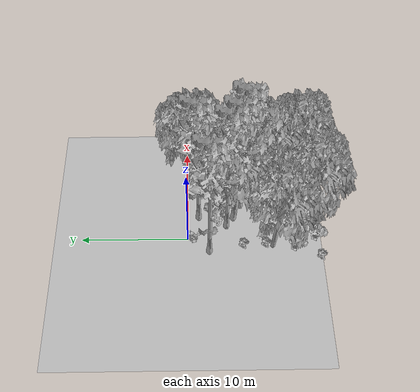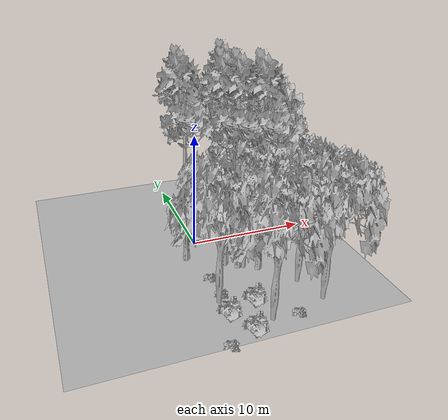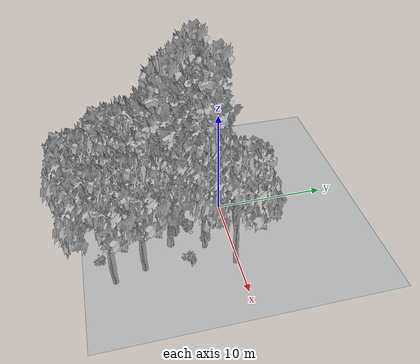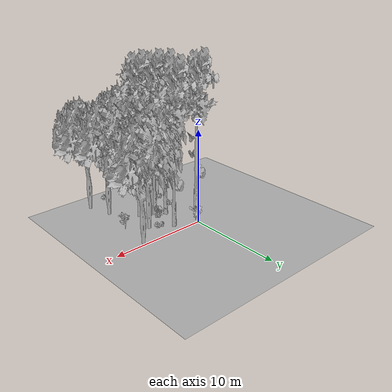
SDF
<sdf version="1.7">
 <world name="default">
  <model name="ground_plane">
   <static>1</static>
   <link name="link">
    <collision name="collision">
     <pose>-50 0 0 0 -0 0</pose>
     <geometry><plane><normal>0 0 1</normal><size>80 80</size></plane></geometry>
     <surface><contact><ode><min_depth>0.01</min_depth><max_vel>0</max_vel></ode></contact></surface>
    </collision>
    <visual name="grass">
     <cast_shadows>0</cast_shadows>
     <geometry>
      <mesh>
       <scale>0.46714285714285714 0.46714285714285714 0.1</scale>
       <uri>file://grass_plane/meshes/grass_plane.dae</uri>
      </mesh>
     </geometry>
    </visual>
   </link>
  </model>
  <model name="Tree 123">
   <static>1</static>
   <pose>5.75366468429813 -7.608955625040792 0 1.57079 -0 0</pose>
   <link name="link">
    <collision name="collision">
     <geometry><mesh><scale>3.5 5 3.5</scale><uri>model://tree_2/meshes/tree_2.obj</uri></mesh></geometry>
    </collision>
    <visual name="visual">
     <geometry><mesh><scale>3.5 5 3.5</scale><uri>model://tree_2/meshes/tree_2.obj</uri></mesh></geometry>
    </visual>
   </link>
  </model>
  <model name="Tree 262">
   <static>1</static>
   <pose>6.748785779944178 -0.22790165724429556 0 1.57079 -0 0</pose>
   <link name="link">
    <collision name="collision">
     <geometry><mesh><scale>3.5 5 3.5</scale><uri>model://tree_2/meshes/tree_2.obj</uri></mesh></geometry>
    </collision>
    <visual name="visual">
     <geometry><mesh><scale>3.5 5 3.5</scale><uri>model://tree_2/meshes/tree_2.obj</uri></mesh></geometry>
    </visual>
   </link>
  </model>
  <model name="Tree 298">
   <static>1</static>
   <pose>4.455972239160822 -2.35144467264071 0 1.57079 -0 0</pose>
   <link name="link">
    <collision name="collision">
     <geometry><mesh><scale>3.5 5 3.5</scale><uri>model://tree_2/meshes/tree_2.obj</uri></mesh></geometry>
    </collision>
    <visual name="visual">
     <geometry><mesh><scale>3.5 5 3.5</scale><uri>model://tree_2/meshes/tree_2.obj</uri></mesh></geometry>
    </visual>
   </link>
  </model>
  <model name="Tree 320">
   <static>1</static>
   <pose>6.520293039682336 -10.087174391727434 0 1.57079 -0 0</pose>
   <link name="link">
    <collision name="collision">
     <geometry><mesh><scale>3.5 5 3.5</scale><uri>model://tree_2/meshes/tree_2.obj</uri></mesh></geometry>
    </collision>
    <visual name="visual">
     <geometry><mesh><scale>3.5 5 3.5</scale><uri>model://tree_2/meshes/tree_2.obj</uri></mesh></geometry>
    </visual>
   </link>
  </model>
  <model name="Tree 379">
   <static>1</static>
   <pose>-1.399387581823376 -2.0093007270075134 0 1.57079 -0 0</pose>
   <link name="link">
    <collision name="collision">
     <geometry><mesh><scale>3.5 5 3.5</scale><uri>model://tree_9/meshes/tree_9.obj</uri></mesh></geometry>
    </collision>
    <visual name="visual">
     <geometry><mesh><scale>3.5 5 3.5</scale><uri>model://tree_9/meshes/tree_9.obj</uri></mesh></geometry>
    </visual>
   </link>
  </model>
  <model name="Tree 395">
   <static>1</static>
   <pose>2.52199741593207 -4.563326864709694 0 1.57079 -0 0</pose>
   <link name="link">
    <collision name="collision">
     <geometry><mesh><scale>3.5 5 3.5</scale><uri>model://tree_2/meshes/tree_2.obj</uri></mesh></geometry>
    </collision>
    <visual name="visual">
     <geometry><mesh><scale>3.5 5 3.5</scale><uri>model://tree_2/meshes/tree_2.obj</uri></mesh></geometry>
    </visual>
   </link>
  </model>
  <model name="Tree 430">
   <static>1</static>
   <pose>2.2413828334305563 -4.382938306900769 0 1.57079 -0 0</pose>
   <link name="link">
    <collision name="collision">
     <geometry><mesh><scale>3.5 5 3.5</scale><uri>model://tree_9/meshes/tree_9.obj</uri></mesh></geometry>
    </collision>
    <visual name="visual">
     <geometry><mesh><scale>3.5 5 3.5</scale><uri>model://tree_9/meshes/tree_9.obj</uri></mesh></geometry>
    </visual>
   </link>
  </model>
  <model name="Tree 493">
   <static>1</static>
   <pose>-0.9529934055958833 -8.025983689429754 0 1.57079 -0 0</pose>
   <link name="link">
    <collision name="collision">
     <geometry><mesh><scale>3.5 5 3.5</scale><uri>model://tree_2/meshes/tree_2.obj</uri></mesh></geometry>
    </collision>
    <visual name="visual">
     <geometry><mesh><scale>3.5 5 3.5</scale><uri>model://tree_2/meshes/tree_2.obj</uri></mesh></geometry>
    </visual>
   </link>
  </model>
  <model name="Tree 515">
   <static>1</static>
   <pose>1.964688802451768 -10.968208029282202 0 1.57079 -0 0</pose>
   <link name="link">
    <collision name="collision">
     <geometry><mesh><scale>3.5 5 3.5</scale><uri>model://tree_2/meshes/tree_2.obj</uri></mesh></geometry>
    </collision>
    <visual name="visual">
     <geometry><mesh><scale>3.5 5 3.5</scale><uri>model://tree_2/meshes/tree_2.obj</uri></mesh></geometry>
    </visual>
   </link>
  </model>
  <model name="Tree 592">
   <static>1</static>
   <pose>2.336964995145337 -1.0725719359684263 0 1.57079 -0 0</pose>
   <link name="link">
    <collision name="collision">
     <geometry><mesh><scale>3.5 5 3.5</scale><uri>model://tree_9/meshes/tree_9.obj</uri></mesh></geometry>
    </collision>
    <visual name="visual">
     <geometry><mesh><scale>3.5 5 3.5</scale><uri>model://tree_9/meshes/tree_9.obj</uri></mesh></geometry>
    </visual>
   </link>
  </model>
  <model name="Tree 606">
   <static>1</static>
   <pose>1.3544350463957358 -3.6960101304044386 0 1.57079 -0 0</pose>
   <link name="link">
    <collision name="collision">
     <geometry><mesh><scale>3.5 5 3.5</scale><uri>model://tree_9/meshes/tree_9.obj</uri></mesh></geometry>
    </collision>
    <visual name="visual">
     <geometry><mesh><scale>3.5 5 3.5</scale><uri>model://tree_9/meshes/tree_9.obj</uri></mesh></geometry>
    </visual>
   </link>
  </model>
  <model name="Tree 613">
   <static>1</static>
   <pose>3.675681983691355 -5.1163016137500605 0 1.57079 -0 0</pose>
   <link name="link">
    <collision name="collision">
     <geometry><mesh><scale>3.5 5 3.5</scale><uri>model://tree_9/meshes/tree_9.obj</uri></mesh></geometry>
    </collision>
    <visual name="visual">
     <geometry><mesh><scale>3.5 5 3.5</scale><uri>model://tree_9/meshes/tree_9.obj</uri></mesh></geometry>
    </visual>
   </link>
  </model>
  <model name="Bush 100">
   <static>1</static>
   <pose>4.053890557551021 -11.127852421406132 0 1.57079 -0 0</pose>
   <link name="link">
    <collision name="collision">
     <geometry><mesh><scale>2 2 2</scale><uri>model://bush_2/meshes/bush_2.obj</uri></mesh></geometry>
     <surface><contact><collide_without_contact>false</collide_without_contact></contact></surface>
    </collision>
    <visual name="visual">
     <geometry><mesh><scale>2 2 2</scale><uri>model://bush_2/meshes/bush_2.obj</uri></mesh></geometry>
    </visual>
   </link>
  </model>
  <model name="Bush 147">
   <static>1</static>
   <pose>2.4132703158823148 -3.4683368483141734 0 1.57079 -0 0</pose>
   <link name="link">
    <collision name="collision">
     <geometry><mesh><scale>2 2 2</scale><uri>model://bush_4/meshes/bush_4.obj</uri></mesh></geometry>
     <surface><contact><collide_without_contact>false</collide_without_contact></contact></surface>
    </collision>
    <visual name="visual">
     <geometry><mesh><scale>2 2 2</scale><uri>model://bush_4/meshes/bush_4.obj</uri></mesh></geometry>
    </visual>
   </link>
  </model>
  <model name="Bush 202">
   <static>1</static>
   <pose>0.14207485361328764 -12.325949097004852 0 1.57079 -0 0</pose>
   <link name="link">
    <collision name="collision">
     <geometry><mesh><scale>2 2 2</scale><uri>model://bush_1/meshes/bush_1.obj</uri></mesh></geometry>
     <surface><contact><collide_without_contact>false</collide_without_contact></contact></surface>
    </collision>
    <visual name="visual">
     <geometry><mesh><scale>2 2 2</scale><uri>model://bush_1/meshes/bush_1.obj</uri></mesh></geometry>
    </visual>
   </link>
  </model>
  <model name="Bush 273">
   <static>1</static>
   <pose>-0.5229243226029112 -5.296330308927466 0 1.57079 -0 0</pose>
   <link name="link">
    <collision name="collision">
     <geometry><mesh><scale>2 2 2</scale><uri>model://bush_2/meshes/bush_2.obj</uri></mesh></geometry>
     <surface><contact><collide_without_contact>false</collide_without_contact></contact></surface>
    </collision>
    <visual name="visual">
     <geometry><mesh><scale>2 2 2</scale><uri>model://bush_2/meshes/bush_2.obj</uri></mesh></geometry>
    </visual>
   </link>
  </model>
  <model name="Bush 290">
   <static>1</static>
   <pose>-1.7872638859896668 -12.562582156770112 0 1.57079 -0 0</pose>
   <link name="link">
    <collision name="collision">
     <geometry><mesh><scale>2 2 2</scale><uri>model://bush_2/meshes/bush_2.obj</uri></mesh></geometry>
     <surface><contact><collide_without_contact>false</collide_without_contact></contact></surface>
    </collision>
    <visual name="visual">
     <geometry><mesh><scale>2 2 2</scale><uri>model://bush_2/meshes/bush_2.obj</uri></mesh></geometry>
    </visual>
   </link>
  </model>
  <model name="Bush 311">
   <static>1</static>
   <pose>-0.43659647142239066 -7.4199379273267425 0 1.57079 -0 0</pose>
   <link name="link">
    <collision name="collision">
     <geometry><mesh><scale>2 2 2</scale><uri>model://bush_2/meshes/bush_2.obj</uri></mesh></geometry>
     <surface><contact><collide_without_contact>false</collide_without_contact></contact></surface>
    </collision>
    <visual name="visual">
     <geometry><mesh><scale>2 2 2</scale><uri>model://bush_2/meshes/bush_2.obj</uri></mesh></geometry>
    </visual>
   </link>
  </model>
  <model name="Bush 389">
   <static>1</static>
   <pose>-0.919541159770958 -10.336388122202067 0 1.57079 -0 0</pose>
   <link name="link">
    <collision name="collision">
     <geometry><mesh><scale>2 2 2</scale><uri>model://bush_1/meshes/bush_1.obj</uri></mesh></geometry>
     <surface><contact><collide_without_contact>false</collide_without_contact></contact></surface>
    </collision>
    <visual name="visual">
     <geometry><mesh><scale>2 2 2</scale><uri>model://bush_1/meshes/bush_1.obj</uri></mesh></geometry>
    </visual>
   </link>
  </model>
  <model name="Bush 431">
   <static>1</static>
   <pose>6.454543154578765 -3.812098788372957 0 1.57079 -0 0</pose>
   <link name="link">
    <collision name="collision">
     <geometry><mesh><scale>2 2 2</scale><uri>model://bush_5/meshes/bush_5.obj</uri></mesh></geometry>
     <surface><contact><collide_without_contact>false</collide_without_contact></contact></surface>
    </collision>
    <visual name="visual">
     <geometry><mesh><scale>2 2 2</scale><uri>model://bush_5/meshes/bush_5.obj</uri></mesh></geometry>
    </visual>
   </link>
  </model>
  <model name="Bush 434">
   <static>1</static>
   <pose>3.5149116997149505 -2.0628054676892873 0 1.57079 -0 0</pose>
   <link name="link">
    <collision name="collision">
     <geometry><mesh><scale>2 2 2</scale><uri>model://bush_2/meshes/bush_2.obj</uri></mesh></geometry>
     <surface><contact><collide_without_contact>false</collide_without_contact></contact></surface>
    </collision>
    <visual name="visual">
     <geometry><mesh><scale>2 2 2</scale><uri>model://bush_2/meshes/bush_2.obj</uri></mesh></geometry>
    </visual>
   </link>
  </model>
  <model name="Bush 519">
   <static>1</static>
   <pose>-0.1358758325504965 -0.5654041755634083 0 1.57079 -0 0</pose>
   <link name="link">
    <collision name="collision">
     <geometry><mesh><scale>2 2 2</scale><uri>model://bush_0/meshes/bush_0.obj</uri></mesh></geometry>
     <surface><contact><collide_without_contact>false</collide_without_contact></contact></surface>
    </collision>
    <visual name="visual">
     <geometry><mesh><scale>2 2 2</scale><uri>model://bush_0/meshes/bush_0.obj</uri></mesh></geometry>
    </visual>
   </link>
  </model>
  <model name="Bush 526">
   <static>1</static>
   <pose>1.375063460345963 -9.529104480287973 0 1.57079 -0 0</pose>
   <link name="link">
    <collision name="collision">
     <geometry><mesh><scale>2 2 2</scale><uri>model://bush_1/meshes/bush_1.obj</uri></mesh></geometry>
     <surface><contact><collide_without_contact>false</collide_without_contact></contact></surface>
    </collision>
    <visual name="visual">
     <geometry><mesh><scale>2 2 2</scale><uri>model://bush_1/meshes/bush_1.obj</uri></mesh></geometry>
    </visual>
   </link>
  </model>
 </world>
</sdf>
